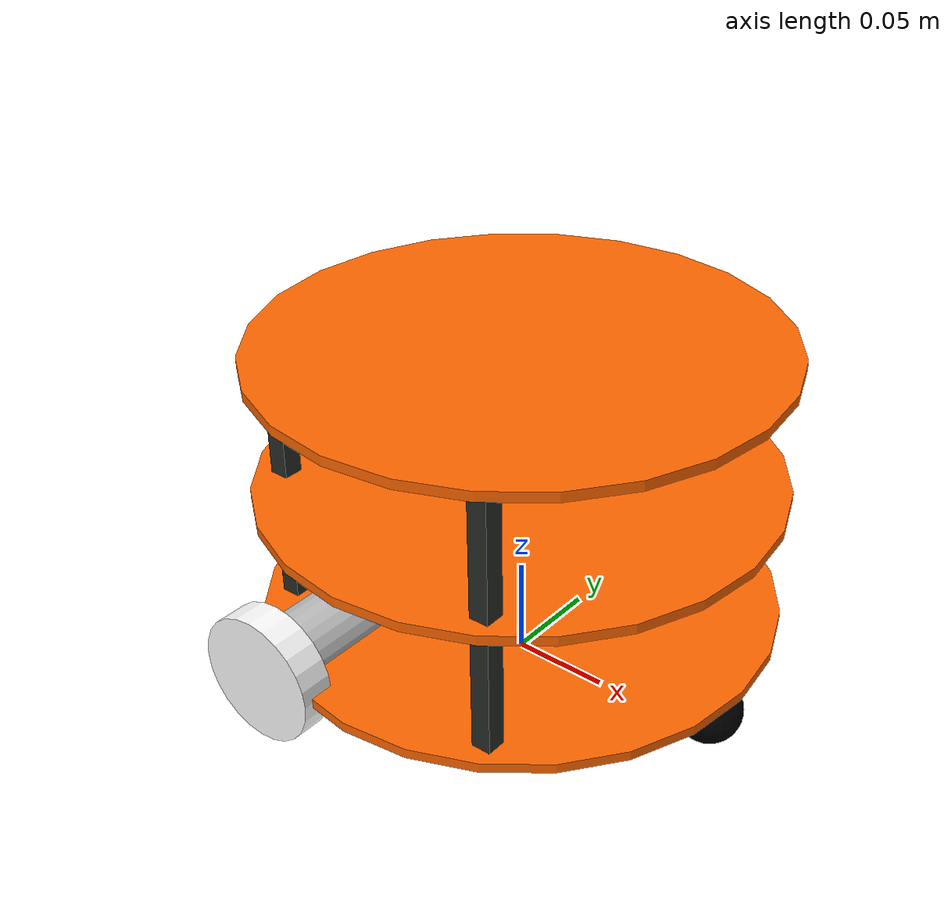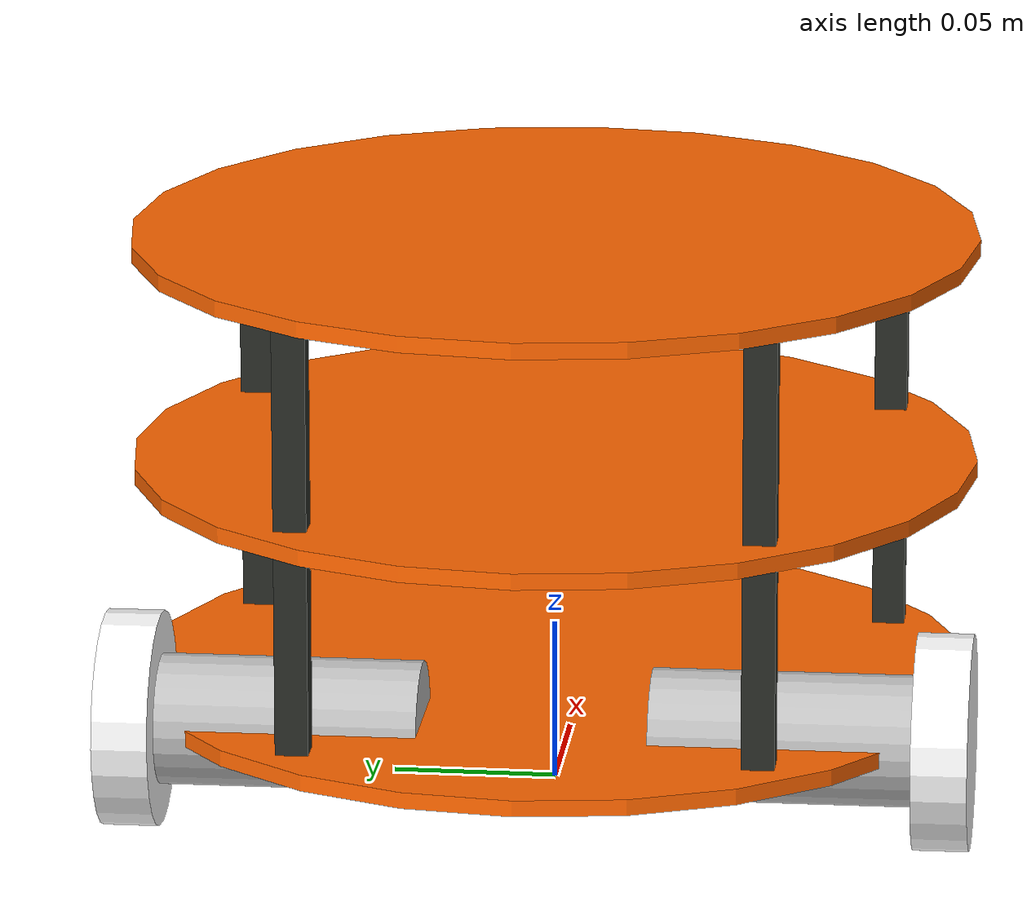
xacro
<?xml version="1.0"?>
<robot name="mrobot" xmlns:xacro="http://ros.org/wiki/xacro">
  <xacro:include filename="$(find mrobot_description)/urdf/common_properties.xacro"/>

  <xacro:property name="wheel_radius" value="0.033"/>
  <xacro:property name="wheel_length" value="0.017"/>
  <xacro:property name="base_link_radius" value="0.13"/>
  <xacro:property name="base_link_length" value="0.005"/>
  <xacro:property name="motor_radius" value="0.02"/>
  <xacro:property name="motor_length" value="0.08"/>
  <xacro:property name="motor_x" value="-0.055"/>
  <xacro:property name="motor_y_dist" value="0.150"/>
  <xacro:property name="plate_height" value="0.07"/>
  <xacro:property name="standoff_x" value="0.12"/>
  <xacro:property name="standoff_y" value="0.10"/>

  <link name="base_footprint"/>

  <link name="base_link">
    <visual>
      <geometry>
        <cylinder radius="${base_link_radius}" length="${base_link_length}"/>
      </geometry>
      <origin xyz=" 0 0 0" rpy="0 0 0" />
      <material name="yellow" />
    </visual>
    <collision>
      <geometry>
        <cylinder radius="${base_link_radius}" length="${base_link_length}"/>
      </geometry>
      <origin xyz=" 0 0 0" rpy="0 0 0" />
    </collision>
    <inertial>
      <origin xyz="0 0 0" />
      <mass value="2" />
      <inertia ixx="0.001" ixy="0.0" ixz="0.0"
               iyy="0.001" iyz="0.0"
               izz="0.5" />
    </inertial>
  </link>
  <joint name="base_footprint_joint" type="fixed">
    <origin xyz="0 0 ${wheel_radius}" rpy="0 0 0" />
    <parent link="base_footprint"/>
    <child link="base_link" />
  </joint>

  <xacro:macro name="motor" params="prefix yreflect">
    <link name="${prefix}_motor">
      <visual>
        <geometry>
          <cylinder radius="${motor_radius}" length="${motor_length}"/>
        </geometry>
        <origin xyz="0 0 0" rpy="${pi/2} 0 0" />
        <material name="gray" />
      </visual>
      <collision>
        <geometry>
          <cylinder radius="${motor_radius}" length="${motor_length}"/>
        </geometry>
        <origin xyz="0 0 0" rpy="${pi/2} 0 0" />
      </collision>
      <inertial>
        <origin xyz="0 0 0" />
        <mass value="0.1" />
        <inertia ixx="0.001" ixy="0.0" ixz="0.0"
          iyy="0.001" iyz="0.0"
          izz="0.001" />
      </inertial>
    </link>
    <joint name="base_${prefix}_motor_joint" type="fixed">
      <origin xyz="${motor_x} ${motor_y_dist/2*yreflect} 0" rpy="0 0 0" />
      <parent link="base_link"/>
      <child link="${prefix}_motor" />
    </joint>
  </xacro:macro>

  <xacro:macro name="wheel" params="prefix yreflect">
    <xacro:motor prefix="${prefix}" yreflect="${yreflect}"/>

    <link name="${prefix}_wheel_link">
      <visual>
        <geometry>
          <cylinder radius="${wheel_radius}" length="${wheel_length}"/>
        </geometry>
        <origin xyz="0 0 0" rpy="${pi/2} 0 0"/>
        <material name="white" />
      </visual>
      <collision>
        <geometry>
          <cylinder radius="${wheel_radius}" length="${wheel_length}"/>
        </geometry>
        <origin xyz="0 0 0" rpy="${pi/2} 0 0"/>
      </collision>
      <inertial>
        <origin xyz="0 0 0" />
        <mass value="0.01" />
        <inertia ixx="0.001" ixy="0.0" ixz="0.0"
          iyy="0.001" iyz="0.0"
          izz="0.001" />
      </inertial>
    </link>
    <joint name="${prefix}_wheel_joint" type="continuous">
      <origin xyz="0 ${(motor_length+wheel_length)/2*yreflect} 0" rpy="0 0 0"/>
      <parent link="${prefix}_motor"/>
      <child link="${prefix}_wheel_link"/>
      <axis xyz="0 1 0"/>
    </joint>
  </xacro:macro>

  <xacro:wheel prefix="left" yreflect="1"/>
  <xacro:wheel prefix="right" yreflect="-1"/>

  <link name="front_caster_link">
    <visual>
      <geometry>
        <sphere radius="${wheel_radius/2}" />
      </geometry>
      <origin xyz="0 0 0" rpy="${pi/2} 0 0"/>
      <material name="black" />
    </visual>
    <collision>
      <geometry>
        <sphere radius="${wheel_radius/2}" />
      </geometry>
      <origin xyz="0 0 0.01" rpy="${pi/2} 0 0"/>
    </collision>
    <inertial>
      <origin xyz="0 0 0" />
      <mass value="0.001" />
      <inertia ixx="0.0001" ixy="0.0" ixz="0.0"
        iyy="0.0001" iyz="0.0"
        izz="0.0001" />
    </inertial>
  </link>
  <joint name="front_caster_joint" type="fixed">
    <origin xyz="${base_link_radius-wheel_radius/2} 0 -${wheel_radius/2}" rpy="0 0 0"/>
    <parent link="base_link"/>
    <child link="front_caster_link"/>
  </joint>

  <xacro:macro name="mrobot_standoff_2in" params="parent number x_loc y_loc z_loc">
    <link name="standoff_2in_${number}_link">
      <visual>
        <geometry>
          <box size="0.01 0.01 0.07" />
        </geometry>
        <origin xyz=" 0 0 0 " rpy="0 0 0" />
        <material name="black2">
          <color rgba="0.16 0.17 0.15 0.9"/>
        </material>
      </visual>
      <collision>
        <geometry>
          <box size="0.01 0.01 0.07" />
        </geometry>
        <origin xyz=" 0 0 0 " rpy="0 0 0" />
      </collision>
      <inertial>
        <origin xyz="0 0 0" />
        <mass value="0.001" />
        <inertia ixx="0.0001" ixy="0.0" ixz="0.0"
                 iyy="0.0001" iyz="0.0"
                 izz="0.0001" />
      </inertial>
    </link>
    <joint name="standoff_2in_${number}_joint" type="fixed">
      <origin xyz="${x_loc} ${y_loc} ${z_loc}" rpy="0 0 0" />
      <parent link="${parent}"/>
      <child link="standoff_2in_${number}_link" />
    </joint>
  </xacro:macro>

  <xacro:mrobot_standoff_2in parent="base_link" number="1" x_loc="-${standoff_x/2 + 0.03}" y_loc="-${standoff_y - 0.03}" z_loc="${plate_height/2}"/>
  <xacro:mrobot_standoff_2in parent="base_link" number="2" x_loc="-${standoff_x/2 + 0.03}" y_loc="${standoff_y - 0.03}" z_loc="${plate_height/2}"/>
  <xacro:mrobot_standoff_2in parent="base_link" number="3" x_loc="${standoff_x/2}" y_loc="-${standoff_y}" z_loc="${plate_height/2}"/>
  <xacro:mrobot_standoff_2in parent="base_link" number="4" x_loc="${standoff_x/2}" y_loc="${standoff_y}" z_loc="${plate_height/2}"/>

  <link name="plate_1_link">
    <visual>
      <geometry>
        <cylinder radius="${base_link_radius}" length="${base_link_length}"/>
      </geometry>
      <origin xyz=" 0 0 0 " rpy="0 0 0" />
      <material name="yellow"/>
    </visual>
    <collision>
      <geometry>
        <cylinder radius="${base_link_radius}" length="${base_link_length}"/>
      </geometry>
      <origin xyz="0 0 0" rpy="0 0 0" />
    </collision>
    <inertial>
      <origin xyz="0 0 0" />
      <mass value="0.1" />
      <inertia ixx="0.01" ixy="0.0" ixz="0.0"
               iyy="0.01" iyz="0.0"
               izz="0.01" />
    </inertial>
  </link>
  <joint name="plate_1_joint" type="fixed">
    <origin xyz="0 0 ${plate_height}" rpy="0 0 0" />
    <parent link="base_link"/>
    <child link="plate_1_link"/>
  </joint>

  <xacro:mrobot_standoff_2in parent="standoff_2in_1_link" number="5" x_loc="0" y_loc="0" z_loc="${plate_height}"/>
  <xacro:mrobot_standoff_2in parent="standoff_2in_2_link" number="6" x_loc="0" y_loc="0" z_loc="${plate_height}"/>
  <xacro:mrobot_standoff_2in parent="standoff_2in_3_link" number="7" x_loc="0" y_loc="0" z_loc="${plate_height}"/>
  <xacro:mrobot_standoff_2in parent="standoff_2in_4_link" number="8" x_loc="0" y_loc="0" z_loc="${plate_height}"/>

  <link name="plate_2_link">
    <visual>
      <geometry>
        <cylinder radius="${base_link_radius}" length="${base_link_length}"/>
      </geometry>
      <origin xyz="0 0 0" rpy="0 0 0" />
      <material name="yellow" />
    </visual>
    <collision>
      <geometry>
        <cylinder radius="${base_link_radius}" length="${base_link_length}"/>
      </geometry>
      <origin xyz="0 0 0" rpy="0 0 0" />
    </collision>
    <inertial>
      <origin xyz="0 0 0" />
      <mass value="0.1" />
      <inertia ixx="0.01" ixy="0.0" ixz="0.0"
               iyy="0.01" iyz="0.0"
               izz="0.01" />
    </inertial>
  </link>
  <joint name="plate_2_joint" type="fixed">
    <origin xyz="0 0 ${plate_height}" rpy="0 0 0" />
    <parent link="plate_1_link"/>
    <child link="plate_2_link"/>
  </joint>
</robot>

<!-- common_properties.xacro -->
<robot xmlns:xacro="http://ros.org/wiki/xacro">

  <!-- Init colour -->

  <material name="black">
      <color rgba="0.0 0.0 0.0 1.0"/>
  </material>

  <material name="white">
    <color rgba="1.0 1.0 1.0 1.0"/>
  </material>

  <material name="gray">
    <color rgba="0.75 0.75 0.75 1.0"/>
  </material>

  <material name="dark">
    <color rgba="0.3 0.3 0.3 1.0"/>
  </material>

  <material name="light_black">
    <color rgba="0.4 0.4 0.4 1.0"/>
  </material>

  <material name="red">
    <color rgba="0.8 0.0 0.0 1.0"/>
  </material>

  <material name="green">
    <color rgba="0.0 0.8 0.0 1.0"/>
  </material>

  <material name="blue">
    <color rgba="0.0 0.0 0.8 1.0"/>
  </material>

  <material name="yellow">
    <color rgba="1.0 0.4 0.0 1.0"/>
  </material>

  <material name="orange">
    <color rgba="${255/255} ${108/255} ${10/255} 1.0"/>
  </material>

  <material name="brown">
    <color rgba="${222/255} ${207/255} ${195/255} 1.0"/>
  </material>
</robot>
